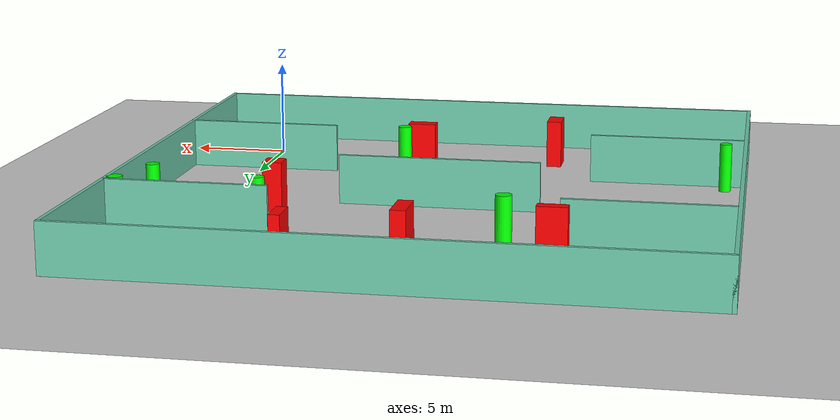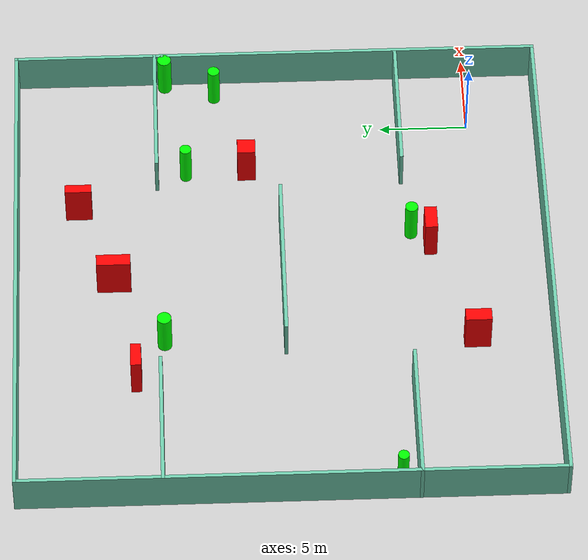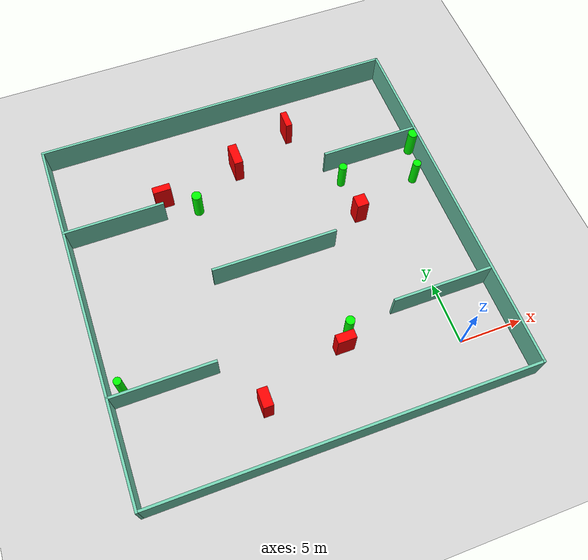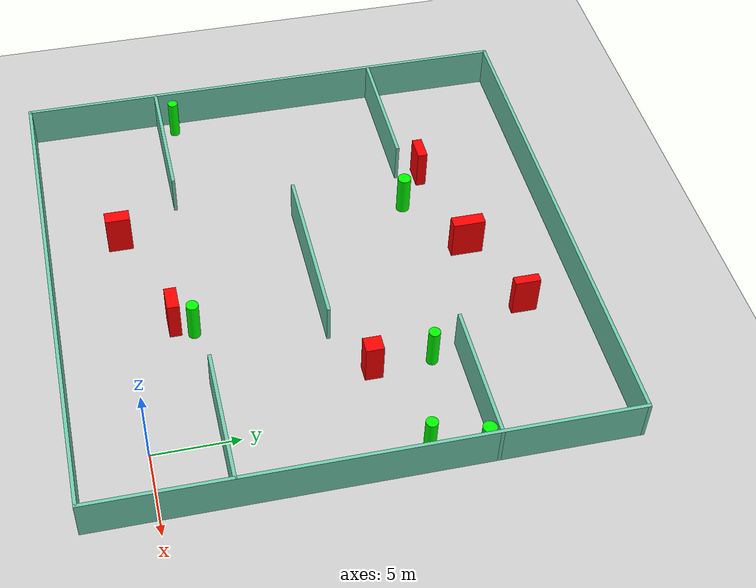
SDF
<sdf version="1.7">
 <world name="default">
  <light name="sun" type="directional">
   <pose>0 0 10 0 -0 0</pose>
   <diffuse>0.8 0.8 0.8 1</diffuse>
   <specular>0.2 0.2 0.2 1</specular>
   <attenuation>
    <range>1000</range>
    <constant>0.9</constant>
    <linear>0.01</linear>
    <quadratic>0.001</quadratic>
   </attenuation>
   <direction>-0.5 0.1 -0.9</direction>
   <spot><inner_angle>0</inner_angle><outer_angle>0</outer_angle><falloff>0</falloff></spot>
  </light>
  <model name="ground_plane">
   <static>1</static>
   <link name="link">
    <collision name="collision">
     <geometry><plane><normal>0 0 1</normal><size>100 100</size></plane></geometry>
     <surface>
      <contact><collide_bitmask>65535</collide_bitmask></contact>
      <friction><ode><mu>100</mu><mu2>50</mu2></ode></friction>
     </surface>
    </collision>
    <visual name="visual">
     <cast_shadows>0</cast_shadows>
     <geometry><plane><normal>0 0 1</normal><size>100 100</size></plane></geometry>
     <material>
      <script><uri>file://media/materials/scripts/gazebo.material</uri><name>Gazebo/Grey</name></script>
     </material>
    </visual>
   </link>
  </model>
  <gravity>0 0 -9.8</gravity>
  <magnetic_field>6e-06 2.3e-05 -4.2e-05</magnetic_field>
  <atmosphere type="adiabatic"/>
  <physics type="ode">
   <max_step_size>0.001</max_step_size>
   <real_time_factor>1</real_time_factor>
   <real_time_update_rate>1000</real_time_update_rate>
  </physics>
  <scene><ambient>0.4 0.4 0.4 1</ambient><background>0.7 0.7 0.7 1</background><shadows>1</shadows></scene>
  <spherical_coordinates>
   <surface_model>EARTH_WGS84</surface_model>
   <latitude_deg>0</latitude_deg>
   <longitude_deg>0</longitude_deg>
   <elevation>0</elevation>
   <heading_deg>0</heading_deg>
  </spherical_coordinates>
  <model name="my_base_walls">
   <link name="Wall_10">
    <collision name="Wall_10_Collision">
     <geometry><box><size>8.2 0.2 2.5</size></box></geometry>
     <pose>0 0 1.25 0 -0 0</pose>
    </collision>
    <visual name="Wall_10_Visual">
     <pose>0 0 1.25 0 -0 0</pose>
     <geometry><box><size>8.2 0.2 2.5</size></box></geometry>
     <material>
      <script><uri>file://media/materials/scripts/gazebo.material</uri><name>Gazebo/Grey</name></script>
      <ambient>0.435294 0.796078 0.67451 1</ambient>
     </material>
     <meta><layer>0</layer></meta>
    </visual>
    <pose>-11 -7 0 0 -0 0</pose>
   </link>
   <link name="Wall_12">
    <collision name="Wall_12_Collision">
     <geometry><box><size>8.2 0.2 2.5</size></box></geometry>
     <pose>0 0 1.25 0 -0 0</pose>
    </collision>
    <visual name="Wall_12_Visual">
     <pose>0 0 1.25 0 -0 0</pose>
     <geometry><box><size>8.2 0.2 2.5</size></box></geometry>
     <material>
      <script><uri>file://media/materials/scripts/gazebo.material</uri><name>Gazebo/Grey</name></script>
      <ambient>0.435294 0.796078 0.67451 1</ambient>
     </material>
     <meta><layer>0</layer></meta>
    </visual>
    <pose>-11 7 0 0 -0 0</pose>
   </link>
   <link name="Wall_14">
    <collision name="Wall_14_Collision">
     <geometry><box><size>8.2 0.2 2.5</size></box></geometry>
     <pose>0 0 1.25 0 -0 0</pose>
    </collision>
    <visual name="Wall_14_Visual">
     <pose>0 0 1.25 0 -0 0</pose>
     <geometry><box><size>8.2 0.2 2.5</size></box></geometry>
     <material>
      <script><uri>file://media/materials/scripts/gazebo.material</uri><name>Gazebo/Grey</name></script>
      <ambient>0.435294 0.796078 0.67451 1</ambient>
     </material>
     <meta><layer>0</layer></meta>
    </visual>
    <pose>11 7 0 0 -0 3.14159</pose>
   </link>
   <link name="Wall_16">
    <collision name="Wall_16_Collision">
     <geometry><box><size>10.2 0.2 2.5</size></box></geometry>
     <pose>0 0 1.25 0 -0 0</pose>
    </collision>
    <visual name="Wall_16_Visual">
     <pose>0 0 1.25 0 -0 0</pose>
     <geometry><box><size>10.2 0.2 2.5</size></box></geometry>
     <material>
      <script><uri>file://media/materials/scripts/gazebo.material</uri><name>Gazebo/Grey</name></script>
      <ambient>0.435294 0.796078 0.67451 1</ambient>
     </material>
     <meta><layer>0</layer></meta>
    </visual>
    <pose>0 0 0 0 -0 3.14159</pose>
   </link>
   <link name="Wall_2">
    <collision name="Wall_2_Collision">
     <geometry><box><size>30.2 0.2 2.5</size></box></geometry>
     <pose>0 0 1.25 0 -0 0</pose>
    </collision>
    <visual name="Wall_2_Visual">
     <pose>0 0 1.25 0 -0 0</pose>
     <geometry><box><size>30.2 0.2 2.5</size></box></geometry>
     <material>
      <script><uri>file://media/materials/scripts/gazebo.material</uri><name>Gazebo/Grey</name></script>
      <ambient>0.435294 0.796078 0.67451 1</ambient>
     </material>
     <meta><layer>0</layer></meta>
    </visual>
    <pose>0 -15 0 0 -0 3.14159</pose>
   </link>
   <link name="Wall_3">
    <collision name="Wall_3_Collision">
     <geometry><box><size>30.2 0.2 2.5</size></box></geometry>
     <pose>0 0 1.25 0 -0 0</pose>
    </collision>
    <visual name="Wall_3_Visual">
     <pose>0 0 1.25 0 -0 0</pose>
     <geometry><box><size>30.2 0.2 2.5</size></box></geometry>
     <material>
      <script><uri>file://media/materials/scripts/gazebo.material</uri><name>Gazebo/Grey</name></script>
      <ambient>0.435294 0.796078 0.67451 1</ambient>
     </material>
     <meta><layer>0</layer></meta>
    </visual>
    <pose>-15 0 0 0 -0 1.5708</pose>
   </link>
   <link name="Wall_4">
    <collision name="Wall_4_Collision">
     <geometry><box><size>30.2 0.2 2.5</size></box></geometry>
     <pose>0 0 1.25 0 -0 0</pose>
    </collision>
    <visual name="Wall_4_Visual">
     <pose>0 0 1.25 0 -0 0</pose>
     <geometry><box><size>30.2 0.2 2.5</size></box></geometry>
     <material>
      <script><uri>file://media/materials/scripts/gazebo.material</uri><name>Gazebo/Grey</name></script>
      <ambient>0.435294 0.796078 0.67451 1</ambient>
     </material>
     <meta><layer>0</layer></meta>
    </visual>
    <pose>0 15 0 0 -0 0</pose>
   </link>
   <link name="Wall_6">
    <collision name="Wall_6_Collision">
     <geometry><box><size>30.2 0.2 2.5</size></box></geometry>
     <pose>0 0 1.25 0 -0 0</pose>
    </collision>
    <visual name="Wall_6_Visual">
     <pose>0 0 1.25 0 -0 0</pose>
     <geometry><box><size>30.2 0.2 2.5</size></box></geometry>
     <material>
      <script><uri>file://media/materials/scripts/gazebo.material</uri><name>Gazebo/Grey</name></script>
      <ambient>0.435294 0.796078 0.67451 1</ambient>
     </material>
     <meta><layer>0</layer></meta>
    </visual>
    <pose>15 0 0 0 -0 1.5708</pose>
   </link>
   <link name="Wall_8">
    <collision name="Wall_8_Collision">
     <geometry><box><size>8.2 0.2 2.5</size></box></geometry>
     <pose>0 0 1.25 0 -0 0</pose>
    </collision>
    <visual name="Wall_8_Visual">
     <pose>0 0 1.25 0 -0 0</pose>
     <geometry><box><size>8.2 0.2 2.5</size></box></geometry>
     <material>
      <script><uri>file://media/materials/scripts/gazebo.material</uri><name>Gazebo/Grey</name></script>
      <ambient>0.435294 0.796078 0.67451 1</ambient>
     </material>
     <meta><layer>0</layer></meta>
    </visual>
    <pose>11 -7 0 0 -0 3.14159</pose>
   </link>
   <static>1</static>
   <pose>-11 11 0 0 -0 0</pose>
  </model>
  <model name="cylinder1">
   <static>1</static>
   <link name="link">
    <inertial>
     <mass>1</mass>
     <inertia><ixx>0.5</ixx><ixy>0</ixy><ixz>0</ixz><iyy>0.5</iyy><iyz>0</iyz><izz>1</izz></inertia>
    </inertial>
    <collision name="collision">
     <geometry><cylinder><radius>0.3394561414925193</radius><length>2.5</length></cylinder></geometry>
    </collision>
    <visual name="visual">
     <geometry><cylinder><radius>0.3394561414925193</radius><length>2.5</length></cylinder></geometry>
     <material>
      <ambient>0 1 0 1</ambient>
      <diffuse>0 1 0 1</diffuse>
      <specular>0.1 0.1 0.1 1</specular>
      <emissive>0 0 0 0</emissive>
     </material>
    </visual>
   </link>
   <pose>2.69175193133038 14.582379101511382 1.25 0 0 0</pose>
  </model>
  <model name="cylinder2">
   <static>1</static>
   <link name="link">
    <inertial>
     <mass>1</mass>
     <inertia><ixx>0.5</ixx><ixy>0</ixy><ixz>0</ixz><iyy>0.5</iyy><iyz>0</iyz><izz>1</izz></inertia>
    </inertial>
    <collision name="collision">
     <geometry><cylinder><radius>0.3333623207965911</radius><length>2.5</length></cylinder></geometry>
    </collision>
    <visual name="visual">
     <geometry><cylinder><radius>0.3333623207965911</radius><length>2.5</length></cylinder></geometry>
     <material>
      <ambient>0 1 0 1</ambient>
      <diffuse>0 1 0 1</diffuse>
      <specular>0.1 0.1 0.1 1</specular>
      <emissive>0 0 0 0</emissive>
     </material>
    </visual>
   </link>
   <pose>-3.1487503591235715 16.330604259326883 1.25 0 0 0</pose>
  </model>
  <model name="cylinder3">
   <static>1</static>
   <link name="link">
    <inertial>
     <mass>1</mass>
     <inertia><ixx>0.5</ixx><ixy>0</ixy><ixz>0</ixz><iyy>0.5</iyy><iyz>0</iyz><izz>1</izz></inertia>
    </inertial>
    <collision name="collision">
     <geometry><cylinder><radius>0.3567181177068428</radius><length>2.5</length></cylinder></geometry>
    </collision>
    <visual name="visual">
     <geometry><cylinder><radius>0.3567181177068428</radius><length>2.5</length></cylinder></geometry>
     <material>
      <ambient>0 1 0 1</ambient>
      <diffuse>0 1 0 1</diffuse>
      <specular>0.1 0.1 0.1 1</specular>
      <emissive>0 0 0 0</emissive>
     </material>
    </visual>
   </link>
   <pose>-7.793371391059937 3.622451129158126 1.25 0 0 0</pose>
  </model>
  <model name="cylinder4">
   <static>1</static>
   <link name="link">
    <inertial>
     <mass>1</mass>
     <inertia><ixx>0.5</ixx><ixy>0</ixy><ixz>0</ixz><iyy>0.5</iyy><iyz>0</iyz><izz>1</izz></inertia>
    </inertial>
    <collision name="collision">
     <geometry><cylinder><radius>0.3996353644041686</radius><length>2.5</length></cylinder></geometry>
    </collision>
    <visual name="visual">
     <geometry><cylinder><radius>0.3996353644041686</radius><length>2.5</length></cylinder></geometry>
     <material>
      <ambient>0 1 0 1</ambient>
      <diffuse>0 1 0 1</diffuse>
      <specular>0.1 0.1 0.1 1</specular>
      <emissive>0 0 0 0</emissive>
     </material>
    </visual>
   </link>
   <pose>-15.24965834524752 17.749000365710547 1.25 0 0 0</pose>
  </model>
  <model name="cylinder5">
   <static>1</static>
   <link name="link">
    <inertial>
     <mass>1</mass>
     <inertia><ixx>0.5</ixx><ixy>0</ixy><ixz>0</ixz><iyy>0.5</iyy><iyz>0</iyz><izz>1</izz></inertia>
    </inertial>
    <collision name="collision">
     <geometry><cylinder><radius>0.3067707645531907</radius><length>2.5</length></cylinder></geometry>
    </collision>
    <visual name="visual">
     <geometry><cylinder><radius>0.3067707645531907</radius><length>2.5</length></cylinder></geometry>
     <material>
      <ambient>0 1 0 1</ambient>
      <diffuse>0 1 0 1</diffuse>
      <specular>0.1 0.1 0.1 1</specular>
      <emissive>0 0 0 0</emissive>
     </material>
    </visual>
   </link>
   <pose>-24.989890910238618 4.966116070121986 1.25 0 0 0</pose>
  </model>
  <model name="cylinder6">
   <static>1</static>
   <link name="link">
    <inertial>
     <mass>1</mass>
     <inertia><ixx>0.5</ixx><ixy>0</ixy><ixz>0</ixz><iyy>0.5</iyy><iyz>0</iyz><izz>1</izz></inertia>
    </inertial>
    <collision name="collision">
     <geometry><cylinder><radius>0.3946035219530084</radius><length>2.5</length></cylinder></geometry>
    </collision>
    <visual name="visual">
     <geometry><cylinder><radius>0.3946035219530084</radius><length>2.5</length></cylinder></geometry>
     <material>
      <ambient>0 1 0 1</ambient>
      <diffuse>0 1 0 1</diffuse>
      <specular>0.1 0.1 0.1 1</specular>
      <emissive>0 0 0 0</emissive>
     </material>
    </visual>
   </link>
   <pose>3.630914873656586 17.430133055814863 1.25 0 0 0</pose>
  </model>
  <model name="box1">
   <static>1</static>
   <link name="link">
    <inertial>
     <mass>1</mass>
     <inertia><ixx>0.083</ixx><ixy>0</ixy><ixz>0</ixz><iyy>0.083</iyy><iyz>0</iyz><izz>0.083</izz></inertia>
    </inertial>
    <collision name="collision">
     <geometry><box><size>0.5400325994183934 1.4924227672038417 2.5</size></box></geometry>
    </collision>
    <visual name="visual">
     <geometry><box><size>0.5400325994183934 1.4924227672038417 2.5</size></box></geometry>
     <material>
      <ambient>1 0 0 1</ambient>
      <diffuse>1 0 0 1</diffuse>
      <specular>0.1 0.1 0.1 1</specular>
      <emissive>0 0 0 0</emissive>
     </material>
    </visual>
    <sensor name="my_contact" type="contact">
     <contact><collision>box_collision</collision><topic>__default_topic__</topic></contact>
    </sensor>
   </link>
   <pose>-5.843198674899746 22.479369302121164 1.25 0 0 0</pose>
  </model>
  <model name="box2">
   <static>1</static>
   <link name="link">
    <inertial>
     <mass>1</mass>
     <inertia><ixx>0.083</ixx><ixy>0</ixy><ixz>0</ixz><iyy>0.083</iyy><iyz>0</iyz><izz>0.083</izz></inertia>
    </inertial>
    <collision name="collision">
     <geometry><box><size>1.4632091030307102 0.5875492246669565 2.5</size></box></geometry>
    </collision>
    <visual name="visual">
     <geometry><box><size>1.4632091030307102 0.5875492246669565 2.5</size></box></geometry>
     <material>
      <ambient>1 0 0 1</ambient>
      <diffuse>1 0 0 1</diffuse>
      <specular>0.1 0.1 0.1 1</specular>
      <emissive>0 0 0 0</emissive>
     </material>
    </visual>
    <sensor name="my_contact" type="contact">
     <contact><collision>box_collision</collision><topic>__default_topic__</topic></contact>
    </sensor>
   </link>
   <pose>-17.710079557355353 19.360410705704368 1.25 0 0 0</pose>
  </model>
  <model name="box3">
   <static>1</static>
   <link name="link">
    <inertial>
     <mass>1</mass>
     <inertia><ixx>0.083</ixx><ixy>0</ixy><ixz>0</ixz><iyy>0.083</iyy><iyz>0</iyz><izz>0.083</izz></inertia>
    </inertial>
    <collision name="collision">
     <geometry><box><size>0.9643671370168032 1.0320349675752838 2.5</size></box></geometry>
    </collision>
    <visual name="visual">
     <geometry><box><size>0.9643671370168032 1.0320349675752838 2.5</size></box></geometry>
     <material>
      <ambient>1 0 0 1</ambient>
      <diffuse>1 0 0 1</diffuse>
      <specular>0.1 0.1 0.1 1</specular>
      <emissive>0 0 0 0</emissive>
     </material>
    </visual>
    <sensor name="my_contact" type="contact">
     <contact><collision>box_collision</collision><topic>__default_topic__</topic></contact>
    </sensor>
   </link>
   <pose>-3.0243127700564685 12.851637616951232 1.25 0 0 0</pose>
  </model>
  <model name="box4">
   <static>1</static>
   <link name="link">
    <inertial>
     <mass>1</mass>
     <inertia><ixx>0.083</ixx><ixy>0</ixy><ixz>0</ixz><iyy>0.083</iyy><iyz>0</iyz><izz>0.083</izz></inertia>
    </inertial>
    <collision name="collision">
     <geometry><box><size>0.7334068099266744 1.9122856803951593 2.5</size></box></geometry>
    </collision>
    <visual name="visual">
     <geometry><box><size>0.7334068099266744 1.9122856803951593 2.5</size></box></geometry>
     <material>
      <ambient>1 0 0 1</ambient>
      <diffuse>1 0 0 1</diffuse>
      <specular>0.1 0.1 0.1 1</specular>
      <emissive>0 0 0 0</emissive>
     </material>
    </visual>
    <sensor name="my_contact" type="contact">
     <contact><collision>box_collision</collision><topic>__default_topic__</topic></contact>
    </sensor>
   </link>
   <pose>-11.046555849706603 20.536374403944727 1.25 0 0 0</pose>
  </model>
  <model name="box5">
   <static>1</static>
   <link name="link">
    <inertial>
     <mass>1</mass>
     <inertia><ixx>0.083</ixx><ixy>0</ixy><ixz>0</ixz><iyy>0.083</iyy><iyz>0</iyz><izz>0.083</izz></inertia>
    </inertial>
    <collision name="collision">
     <geometry><box><size>0.7788613919134214 1.4654610799389378 2.5</size></box></geometry>
    </collision>
    <visual name="visual">
     <geometry><box><size>0.7788613919134214 1.4654610799389378 2.5</size></box></geometry>
     <material>
      <ambient>1 0 0 1</ambient>
      <diffuse>1 0 0 1</diffuse>
      <specular>0.1 0.1 0.1 1</specular>
      <emissive>0 0 0 0</emissive>
     </material>
    </visual>
    <sensor name="my_contact" type="contact">
     <contact><collision>box_collision</collision><topic>__default_topic__</topic></contact>
    </sensor>
   </link>
   <pose>-15.583309529089764 0.3147054654903516 1.25 0 0 0</pose>
  </model>
  <model name="box6">
   <static>1</static>
   <link name="link">
    <inertial>
     <mass>1</mass>
     <inertia><ixx>0.083</ixx><ixy>0</ixy><ixz>0</ixz><iyy>0.083</iyy><iyz>0</iyz><izz>0.083</izz></inertia>
    </inertial>
    <collision name="collision">
     <geometry><box><size>1.4771067321577498 0.7022721129777174 2.5</size></box></geometry>
    </collision>
    <visual name="visual">
     <geometry><box><size>1.4771067321577498 0.7022721129777174 2.5</size></box></geometry>
     <material>
      <ambient>1 0 0 1</ambient>
      <diffuse>1 0 0 1</diffuse>
      <specular>0.1 0.1 0.1 1</specular>
      <emissive>0 0 0 0</emissive>
     </material>
    </visual>
    <sensor name="my_contact" type="contact">
     <contact><collision>box_collision</collision><topic>__default_topic__</topic></contact>
    </sensor>
   </link>
   <pose>-8.574604109201658 2.56932969044402 1.25 0 0 0</pose>
  </model>
 </world>
</sdf>
